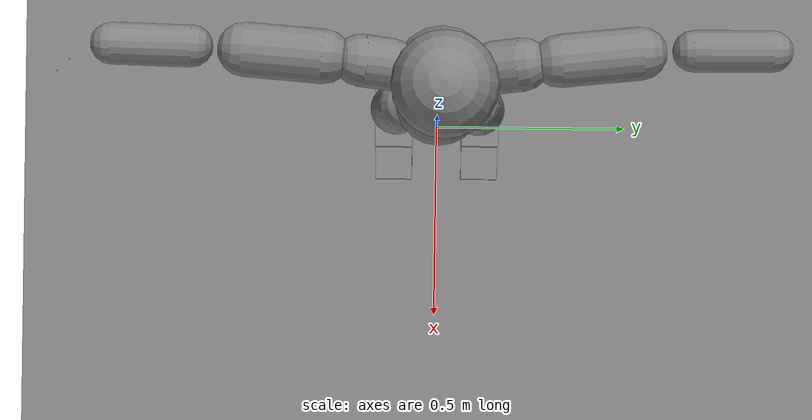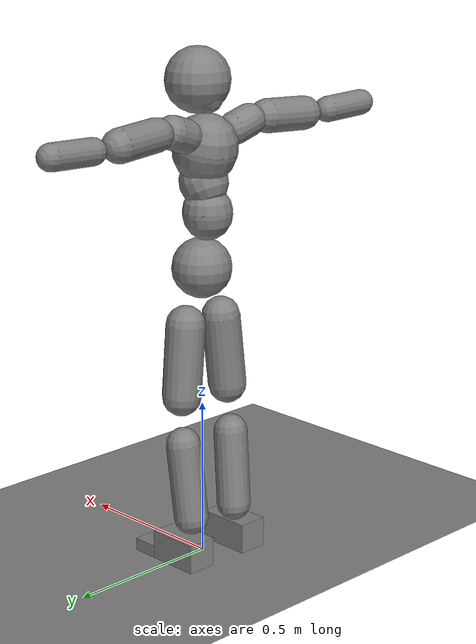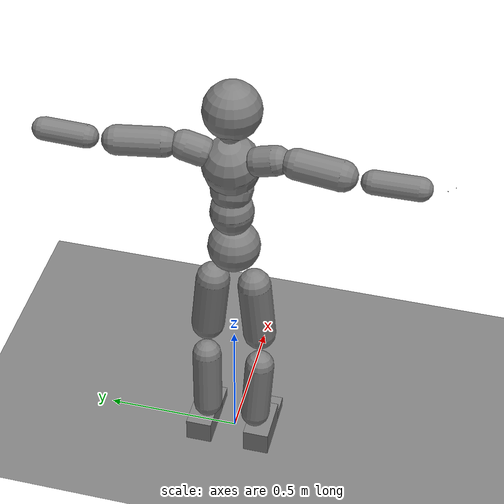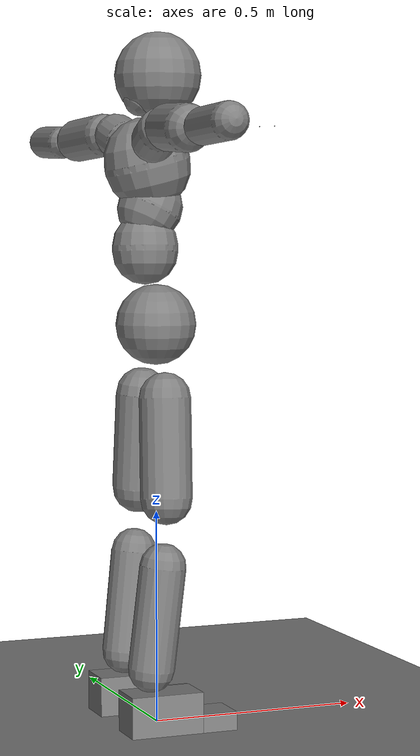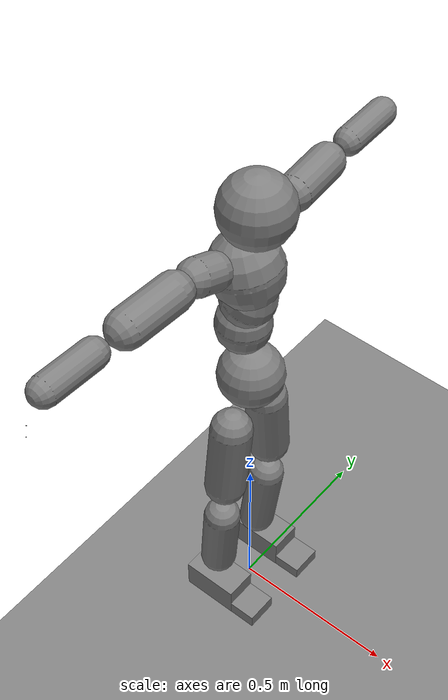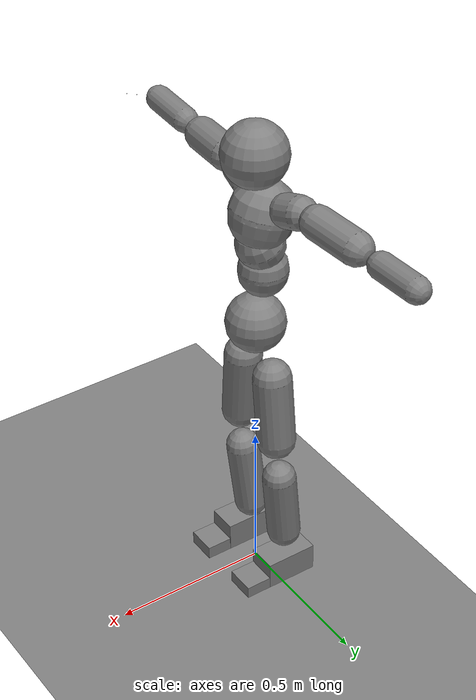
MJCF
<?xml version="1.0" encoding="utf-8"?>
<mujoco model="smpl_shadowhand">
  <compiler angle="radian" coordinate="local" meshdir="../stls/hand" texturedir="../textures"></compiler>

  <option timestep="0.00555" iterations="20" apirate="200">
      <flag warmstart="enable"></flag>
  </option>

  <size njmax="500" nconmax="100" nuser_jnt="1" nuser_site="1" nuser_tendon="1" nuser_sensor="1" nuser_actuator="16" nstack="600000"></size>

  <visual>
      <map fogstart="3" fogend="5" force="0.1"></map>
      <quality shadowsize="4096"></quality>
  </visual>

  <default>
    <default class="robot0:asset_class">
        <geom friction="1 0.005 0.001" condim="3" margin="0.0005" contype="1" conaffinity="1"></geom>
        <joint limited="true" damping="0.1" armature="0.001" margin="0.01" frictionloss="0.001"></joint>
        <site size="0.005" rgba="0.4 0.9 0.4 1"></site>
        <general ctrllimited="true" forcelimited="true"></general>
    </default>
    <default class="robot0:D_Touch">
        <site type="box" size="0.009 0.004 0.013" pos="0 -0.004 0.018" rgba="0.8 0.8 0.8 0.15" group="4"></site>
    </default>
    <default class="robot0:DC_Hand">
        <geom material="robot0:MatColl" contype="1" conaffinity="0" group="4"></geom>
    </default>
    <default class="robot0:D_Vizual">
        <geom material="robot0:MatViz" contype="0" conaffinity="0" group="1" type="mesh"></geom>
    </default>
    <default class="robot0:free">
        <joint type="free" damping="0" armature="0" limited="false"></joint>
    </default>

    <motor ctrlrange="-1 1" ctrllimited="true"/>
    <geom type="capsule" condim="1" friction="1.0 0.05 0.05" solimp=".9 .99 .003" solref=".015 1"/>
    <joint type="hinge" damping="0.1" stiffness="5" armature=".007" limited="true" solimplimit="0 .99 .01"/>
    <site size=".04" group="3"/>
    <default class="force-torque">
      <site type="box" size=".01 .01 .02" rgba="1 0 0 1"/>
    </default>
    <default class="touch">
      <site type="capsule" rgba="0 0 1 .3"/>
    </default>
  </default>

  <contact>
      <pair geom1="robot0:C_ffdistal" geom2="robot0:C_thdistal" condim="1"></pair>
      <pair geom1="robot0:C_ffmiddle" geom2="robot0:C_thdistal" condim="1"></pair>
      <pair geom1="robot0:C_ffproximal" geom2="robot0:C_thdistal" condim="1"></pair>
      <pair geom1="robot0:C_mfproximal" geom2="robot0:C_thdistal" condim="1"></pair>
      <pair geom1="robot0:C_mfdistal" geom2="robot0:C_thdistal" condim="1"></pair>
      <pair geom1="robot0:C_rfdistal" geom2="robot0:C_thdistal" condim="1"></pair>
      <pair geom1="robot0:C_lfdistal" geom2="robot0:C_thdistal" condim="1"></pair>
      <pair geom1="robot0:C_palm0" geom2="robot0:C_thdistal" condim="1"></pair>
      <pair geom1="robot0:C_mfdistal" geom2="robot0:C_ffdistal" condim="1"></pair>
      <pair geom1="robot0:C_rfdistal" geom2="robot0:C_mfdistal" condim="1"></pair>
      <pair geom1="robot0:C_lfdistal" geom2="robot0:C_rfdistal" condim="1"></pair>
      <pair geom1="robot0:C_mfproximal" geom2="robot0:C_ffproximal" condim="1"></pair>
      <pair geom1="robot0:C_rfproximal" geom2="robot0:C_mfproximal" condim="1"></pair>
      <pair geom1="robot0:C_lfproximal" geom2="robot0:C_rfproximal" condim="1"></pair>
      <pair geom1="robot0:C_lfdistal" geom2="robot0:C_rfdistal" condim="1"></pair>
      <pair geom1="robot0:C_lfdistal" geom2="robot0:C_mfdistal" condim="1"></pair>
      <pair geom1="robot0:C_lfdistal" geom2="robot0:C_rfmiddle" condim="1"></pair>
      <pair geom1="robot0:C_lfmiddle" geom2="robot0:C_rfdistal" condim="1"></pair>
      <pair geom1="robot0:C_lfmiddle" geom2="robot0:C_rfmiddle" condim="1"></pair>
  </contact>

  <tendon>
      <fixed name="robot0:T_FFJ1c" limited="true" range="-0.001 0.001">
          <joint joint="robot0:FFJ0" coef="0.00705"></joint>
          <joint joint="robot0:FFJ1" coef="-0.00805"></joint>
      </fixed>
      <fixed name="robot0:T_MFJ1c" limited="true" range="-0.001 0.001">
          <joint joint="robot0:MFJ0" coef="0.00705"></joint>
          <joint joint="robot0:MFJ1" coef="-0.00805"></joint>
      </fixed>
      <fixed name="robot0:T_RFJ1c" limited="true" range="-0.001 0.001">
          <joint joint="robot0:RFJ0" coef="0.00705"></joint>
          <joint joint="robot0:RFJ1" coef="-0.00805"></joint>
      </fixed>
      <fixed name="robot0:T_LFJ1c" limited="true" range="-0.001 0.001">
          <joint joint="robot0:LFJ0" coef="0.00705"></joint>
          <joint joint="robot0:LFJ1" coef="-0.00805"></joint>
      </fixed>
  </tendon>

  <asset>
    <texture type="skybox" builtin="gradient" rgb1="0.44 0.85 0.56" rgb2="0.46 0.87 0.58" width="32" height="32"></texture>

    <texture name="robot0:texplane" type="2d" builtin="checker" rgb1="0.2 0.3 0.4" rgb2="0.1 0.15 0.2" width="512" height="512"></texture>
    <texture name="robot0:texgeom" type="cube" builtin="flat" mark="cross" width="127" height="127" rgb1="0.3 0.6 0.5" rgb2="0.3 0.6 0.5" markrgb="0 0 0" random="0.01"></texture>

    <material name="robot0:MatGnd" reflectance="0.5" texture="robot0:texplane" texrepeat="1 1" texuniform="true"></material>
    <material name="robot0:MatColl" specular="1" shininess="0.3" reflectance="0.5" rgba="0.4 0.5 0.6 1"></material>
    <material name="robot0:MatViz" specular="0.75" shininess="0.1" reflectance="0.5" rgba="0.93 0.93 0.93 1"></material>
    <material name="robot0:object" texture="robot0:texgeom" texuniform="false"></material>
    <material name="floor_mat" specular="0" shininess="0.5" reflectance="0" rgba="0.2 0.2 0.2 0"></material>

    <mesh name="robot0:palm" scale="0.001 0.001 0.001" file="palm.stl"></mesh>
    <mesh name="robot0:knuckle" scale="0.001 0.001 0.001" file="knuckle.stl"></mesh>
    <mesh name="robot0:F3" scale="0.001 0.001 0.001" file="F3.stl"></mesh>
    <mesh name="robot0:F2" scale="0.001 0.001 0.001" file="F2.stl"></mesh>
    <mesh name="robot0:F1" scale="0.001 0.001 0.001" file="F1.stl"></mesh>
    <mesh name="robot0:lfmetacarpal" scale="0.001 0.001 0.001" file="lfmetacarpal.stl"></mesh>
    <mesh name="robot0:TH3_z" scale="0.001 0.001 0.001" file="TH3_z.stl"></mesh>
    <mesh name="robot0:TH2_z" scale="0.001 0.001 0.001" file="TH2_z.stl"></mesh>
    <mesh name="robot0:TH1_z" scale="0.001 0.001 0.001" file="TH1_z.stl"></mesh>
  </asset>

  <worldbody>
    <light directional="true" ambient="0.2 0.2 0.2" diffuse="0.8 0.8 0.8" specular="0.3 0.3 0.3" castshadow="false" pos="0 1 4" dir="0 0 -1" name="light0"></light>
    <geom name="floor" type="plane" conaffinity="1" size="100 100 .2" />
    <body name="Pelvis" pos="0 0 0.94">
      <freejoint name="Pelvis"/>
      <geom type="sphere" contype="1" conaffinity="1" density="4629.6296296296305" size="0.0942" pos="0.0000 0.0000 0.0000"/>
      <body name="L_Hip" pos="-0.0068 0.0695 -0.0914">
        <joint name="L_Hip_x" type="hinge" pos="0 0 0" axis="1 0 0" stiffness="500" damping="50" armature="0.02" range="-3.14159 3.14159"/>
        <joint name="L_Hip_y" type="hinge" pos="0 0 0" axis="0 1 0" stiffness="500" damping="50" armature="0.02" range="-3.14159 3.14159"/>
        <joint name="L_Hip_z" type="hinge" pos="0 0 0" axis="0 0 1" stiffness="500" damping="50" armature="0.02" range="-3.14159 3.14159"/>
        <geom type="capsule" contype="1" conaffinity="1" density="2040.816327" fromto="-0.0009 0.0069 -0.0750 -0.0036 0.0274 -0.3002" size="0.0615"/>
        <body name="L_Knee" pos="-0.0045 0.0343 -0.3752">
          <joint name="L_Knee_x" type="hinge" pos="0 0 0" axis="1 0 0" stiffness="500" damping="50" armature="0.02" range="-3.14159 3.14159"/>
          <joint name="L_Knee_y" type="hinge" pos="0 0 0" axis="0 1 0" stiffness="500" damping="50" armature="0.02" range="-3.14159 3.14159"/>
          <joint name="L_Knee_z" type="hinge" pos="0 0 0" axis="0 0 1" stiffness="500" damping="50" armature="0.02" range="-3.14159 3.14159"/>
          <geom type="capsule" contype="1" conaffinity="1" density="1234.567901" fromto="-0.0087 -0.0027 -0.0796 -0.0350 -0.0109 -0.3184" size="0.0541"/>
          <body name="L_Ankle" pos="-0.0437 -0.0136 -0.398">
            <joint name="L_Ankle_x" type="hinge" pos="0 0 0" axis="1 0 0" stiffness="400" damping="40" armature="0.02" range="-3.14159 3.14159"/>
            <joint name="L_Ankle_y" type="hinge" pos="0 0 0" axis="0 1 0" stiffness="400" damping="40" armature="0.02" range="-3.14159 3.14159"/>
            <joint name="L_Ankle_z" type="hinge" pos="0 0 0" axis="0 0 1" stiffness="400" damping="40" armature="0.02" range="-3.14159 3.14159"/>
            <geom type="box" pos="0.0242 0.0233 -0.0239" size="0.085 0.0483 0.0464" quat="1.0000 0.0000 0.0000 0.0000"/>
            <body name="L_Toe" pos="0.1193 0.0264 -0.0558">
              <joint name="L_Toe_x" type="hinge" pos="0 0 0" axis="1 0 0" stiffness="200" damping="20" armature="0.02" range="-3.14159 3.14159"/>
              <joint name="L_Toe_y" type="hinge" pos="0 0 0" axis="0 1 0" stiffness="200" damping="20" armature="0.02" range="-3.14159 3.14159"/>
              <joint name="L_Toe_z" type="hinge" pos="0 0 0" axis="0 0 1" stiffness="200" damping="20" armature="0.02" range="-3.14159 3.14159"/>
              <geom type="box" pos="0.0248 -0.0030 0.0055" size="0.0496 0.0478 0.02" quat="1.0000 0.0000 0.0000 0.0000"/>
            </body>
          </body>
        </body>
      </body>
      <body name="R_Hip" pos="-0.0043 -0.0677 -0.0905">
        <joint name="R_Hip_x" type="hinge" pos="0 0 0" axis="1 0 0" stiffness="500" damping="50" armature="0.02" range="-3.14159 3.14159"/>
        <joint name="R_Hip_y" type="hinge" pos="0 0 0" axis="0 1 0" stiffness="500" damping="50" armature="0.02" range="-3.14159 3.14159"/>
        <joint name="R_Hip_z" type="hinge" pos="0 0 0" axis="0 0 1" stiffness="500" damping="50" armature="0.02" range="-3.14159 3.14159"/>
        <geom type="capsule" contype="1" conaffinity="1" density="2040.816327" fromto="-0.0018 -0.0077 -0.0765 -0.0071 -0.0306 -0.3061" size="0.0606"/>
        <body name="R_Knee" pos="-0.0089 -0.0383 -0.3826">
          <joint name="R_Knee_x" type="hinge" pos="0 0 0" axis="1 0 0" stiffness="500" damping="50" armature="0.02" range="-3.14159 3.14159"/>
          <joint name="R_Knee_y" type="hinge" pos="0 0 0" axis="0 1 0" stiffness="500" damping="50" armature="0.02" range="-3.14159 3.14159"/>
          <joint name="R_Knee_z" type="hinge" pos="0 0 0" axis="0 0 1" stiffness="500" damping="50" armature="0.02" range="-3.14159 3.14159"/>
          <geom type="capsule" contype="1" conaffinity="1" density="1234.567901" fromto="-0.0085 0.0032 -0.0797 -0.0338 0.0126 -0.3187" size="0.0541"/>
          <body name="R_Ankle" pos="-0.0423 0.0158 -0.3984">
            <joint name="R_Ankle_x" type="hinge" pos="0 0 0" axis="1 0 0" stiffness="400" damping="40" armature="0.02" range="-3.14159 3.14159"/>
            <joint name="R_Ankle_y" type="hinge" pos="0 0 0" axis="0 1 0" stiffness="400" damping="40" armature="0.02" range="-3.14159 3.14159"/>
            <joint name="R_Ankle_z" type="hinge" pos="0 0 0" axis="0 0 1" stiffness="400" damping="40" armature="0.02" range="-3.14159 3.14159"/>
            <geom type="box" pos="0.0256 -0.0212 -0.0174" size="0.0865 0.0483 0.0478" quat="1.0000 0.0000 0.0000 0.0000"/>
            <body name="R_Toe" pos="0.1233 -0.0254 -0.0481">
              <joint name="R_Toe_x" type="hinge" pos="0 0 0" axis="1 0 0" stiffness="200" damping="20" armature="0.02" range="-3.14159 3.14159"/>
              <joint name="R_Toe_y" type="hinge" pos="0 0 0" axis="0 1 0" stiffness="200" damping="20" armature="0.02" range="-3.14159 3.14159"/>
              <joint name="R_Toe_z" type="hinge" pos="0 0 0" axis="0 0 1" stiffness="200" damping="20" armature="0.02" range="-3.14159 3.14159"/>
              <geom type="box" pos="0.0227 0.0042 0.0045" size="0.0493 0.0479 0.0216" quat="1.0000 0.0000 0.0000 0.0000"/>
            </body>
          </body>
        </body>
      </body>
      <body name="Torso" pos="-0.0267 -0.0025 0.109">
        <joint name="Torso_x" type="hinge" pos="0 0 0" axis="1 0 0" stiffness="1000" damping="100" armature="0.02" range="-3.14159 3.14159"/>
        <joint name="Torso_y" type="hinge" pos="0 0 0" axis="0 1 0" stiffness="1000" damping="100" armature="0.02" range="-3.14159 3.14159"/>
        <joint name="Torso_z" type="hinge" pos="0 0 0" axis="0 0 1" stiffness="1000" damping="100" armature="0.02" range="-3.14159 3.14159"/>
        <geom type="capsule" contype="1" conaffinity="1" density="2040.816327" fromto="0.0005 0.0025 0.0608 0.0006 0.0030 0.0743" size="0.0769"/>
        <body name="Spine" pos="0.0011 0.0055 0.1352">
          <joint name="Spine_x" type="hinge" pos="0 0 0" axis="1 0 0" stiffness="1000" damping="100" armature="0.02" range="-3.14159 3.14159"/>
          <joint name="Spine_y" type="hinge" pos="0 0 0" axis="0 1 0" stiffness="1000" damping="100" armature="0.02" range="-3.14159 3.14159"/>
          <joint name="Spine_z" type="hinge" pos="0 0 0" axis="0 0 1" stiffness="1000" damping="100" armature="0.02" range="-3.14159 3.14159"/>
          <geom type="capsule" contype="1" conaffinity="1" density="2040.816327" fromto="0.0114 0.0007 0.0238 0.0140 0.0008 0.0291" size="0.0755"/>
          <body name="Chest" pos="0.0254 0.0015 0.0529">
            <joint name="Chest_x" type="hinge" pos="0 0 0" axis="1 0 0" stiffness="1000" damping="100" armature="0.02" range="-3.14159 3.14159"/>
            <joint name="Chest_y" type="hinge" pos="0 0 0" axis="0 1 0" stiffness="1000" damping="100" armature="0.02" range="-3.14159 3.14159"/>
            <joint name="Chest_z" type="hinge" pos="0 0 0" axis="0 0 1" stiffness="1000" damping="100" armature="0.02" range="-3.14159 3.14159"/>
            <geom type="capsule" contype="1" conaffinity="1" density="2040.816327" fromto="-0.0173 -0.0009 0.0682 -0.0212 -0.0010 0.0833" size="0.1002"/>
            <body name="Neck" pos="-0.0429 -0.0028 0.2139">
              <joint name="Neck_x" type="hinge" pos="0 0 0" axis="1 0 0" stiffness="100" damping="10" armature="0.02" range="-3.14159 3.14159"/>
              <joint name="Neck_y" type="hinge" pos="0 0 0" axis="0 1 0" stiffness="100" damping="10" armature="0.02" range="-3.14159 3.14159"/>
              <joint name="Neck_z" type="hinge" pos="0 0 0" axis="0 0 1" stiffness="100" damping="10" armature="0.02" range="-3.14159 3.14159"/>
              <geom type="capsule" contype="1" conaffinity="1" density="1000" fromto="0.0103 0.0010 0.0130 0.0411 0.0041 0.0520" size="0.0436"/>
              <body name="Head" pos="0.0513 0.0052 0.065">
                <joint name="Head_x" type="hinge" pos="0 0 0" axis="1 0 0" stiffness="100" damping="10" armature="0.02" range="-3.14159 3.14159"/>
                <joint name="Head_y" type="hinge" pos="0 0 0" axis="0 1 0" stiffness="100" damping="10" armature="0.02" range="-3.14159 3.14159"/>
                <joint name="Head_z" type="hinge" pos="0 0 0" axis="0 0 1" stiffness="100" damping="10" armature="0.02" range="-3.14159 3.14159"/>
                <geom type="sphere" contype="1" conaffinity="1" density="1000" size="0.1011" pos="0.0000 0.0000 0.0000"/>
              </body>
            </body>
            <body name="L_Thorax" pos="-0.0341 0.0788 0.1217">
              <joint name="L_Thorax_x" type="hinge" pos="0 0 0" axis="1 0 0" stiffness="400" damping="40" armature="0.02" range="-3.14159 3.14159"/>
              <joint name="L_Thorax_y" type="hinge" pos="0 0 0" axis="0 1 0" stiffness="400" damping="40" armature="0.02" range="-3.14159 3.14159"/>
              <joint name="L_Thorax_z" type="hinge" pos="0 0 0" axis="0 0 1" stiffness="400" damping="40" armature="0.02" range="-3.14159 3.14159"/>
              <geom type="capsule" contype="1" conaffinity="1" density="1000" fromto="-0.0018 0.0182 0.0061 -0.0071 0.0728 0.0244" size="0.0521"/>
              <body name="L_Shoulder" pos="-0.0089 0.091 0.0305">
                <joint name="L_Shoulder_x" type="hinge" pos="0 0 0" axis="1 0 0" stiffness="400" damping="40" armature="0.02" range="-3.14159 3.14159"/>
                <joint name="L_Shoulder_y" type="hinge" pos="0 0 0" axis="0 1 0" stiffness="400" damping="40" armature="0.02" range="-3.14159 3.14159"/>
                <joint name="L_Shoulder_z" type="hinge" pos="0 0 0" axis="0 0 1" stiffness="400" damping="40" armature="0.02" range="-3.14159 3.14159"/>
                <geom type="capsule" contype="1" conaffinity="1" density="1000" fromto="-0.0055 0.0519 -0.0026 -0.0220 0.2077 -0.0102" size="0.0517"/>
                <body name="L_Elbow" pos="-0.0275 0.2596 -0.0128">
                  <joint name="L_Elbow_x" type="hinge" pos="0 0 0" axis="1 0 0" stiffness="300" damping="30" armature="0.02" range="-3.14159 3.14159"/>
                  <joint name="L_Elbow_y" type="hinge" pos="0 0 0" axis="0 1 0" stiffness="300" damping="30" armature="0.02" range="-3.14159 3.14159"/>
                  <joint name="L_Elbow_z" type="hinge" pos="0 0 0" axis="0 0 1" stiffness="300" damping="30" armature="0.02" range="-3.14159 3.14159"/>
                  <geom type="capsule" contype="1" conaffinity="1" density="1000" fromto="-0.0002 0.0498 0.0018 -0.0009 0.1994 0.0072" size="0.0405"/>
                  <body name="L_Wrist" pos="-0.0012 0.2492 0.009">
                    <joint name="L_Wrist_x" type="hinge" pos="0 0 0" axis="1 0 0" stiffness="100" damping="10" armature="0.02" range="-3.14159 3.14159"/>
                    <joint name="L_Wrist_y" type="hinge" pos="0 0 0" axis="0 1 0" stiffness="100" damping="10" armature="0.02" range="-3.14159 3.14159"/>
                    <joint name="L_Wrist_z" type="hinge" pos="0 0 0" axis="0 0 1" stiffness="100" damping="10" armature="0.02" range="-3.14159 3.14159"/>

                    <body name="L_Hand" pos="0 0.01 0" quat="0.707 -0.707 0 0">
                      <site name="L_Hand" class="touch" type="sphere" size=".041"/>
                      <geom name="robot0:C_palm0_l" class="robot0:DC_Hand" size="0.032 0.0111 0.049" pos="0.011 0 0.038" type="box" rgba="0.4 0.5 0.6 0.1" />
                      <geom name="robot0:C_palm1_l" class="robot0:DC_Hand" size="0.011 0.0111 0.025" pos="-0.032 0 0.014" type="box" rgba="0.4 0.5 0.6 0.1" />
                      <geom name="robot0:C_ffproximal_l" class="robot0:DC_Hand" size="0.01 0.0175" pos="0.036 0.004 0.1075" type="capsule" />
                      <geom name="robot0:C_ffmiddle_l" class="robot0:DC_Hand" size="0.00805 0.0125" pos="0.036 0.004 0.1375" type="capsule" />
                      <geom name="robot0:C_ffdistal_l" class="robot0:DC_Hand" size="0.00705 0.012" pos="0.036 0.004 0.162" type="capsule" condim="4" />

                      <geom name="robot0:C_mfproximal_l" class="robot0:DC_Hand" size="0.01 0.0175" pos="0.011 0 0.1125" type="capsule" />
                      <geom name="robot0:C_mfmiddle_l" class="robot0:DC_Hand" size="0.00805 0.0125" pos="0.011 0 0.1465" type="capsule" />
                      <geom name="robot0:C_mfdistal_l" class="robot0:DC_Hand" size="0.00705 0.012" pos="0.011 0 0.171" type="capsule" condim="4" />

                      <geom name="robot0:C_rfproximal_l" class="robot0:DC_Hand" size="0.01 0.0175" pos="-0.012 0.004 0.1075" type="capsule" />
                      <geom name="robot0:C_rfmiddle_l" class="robot0:DC_Hand" size="0.00805 0.0125" pos="-0.012 0.004 0.1355" type="capsule" />
                      <geom name="robot0:C_rfdistal_l" class="robot0:DC_Hand" size="0.00705 0.012" pos="-0.012 0.004 0.16" type="capsule" condim="4" />

                      <geom name="robot0:C_lfmetacarpal_l" class="robot0:DC_Hand" size="0.0095 0.0111 0.025" pos="-0.0335 0 0.054" type="box" rgba="0.4 0.5 0.6 0.2" />
                      <geom name="robot0:C_lfproximal_l" class="robot0:DC_Hand" size="0.01 0.0138" pos="-0.034 0.008 0.0965" type="capsule" />
                      <geom name="robot0:C_lfmiddle_l" class="robot0:DC_Hand" size="0.00805 0.0125" pos="-0.034 0.008 0.1165" type="capsule" />
                      <geom name="robot0:C_lfdistal_l" class="robot0:DC_Hand" size="0.00705 0.012" pos="-0.034 0.008 0.136" type="capsule" condim="4" />

                      <geom name="robot0:C_thproximal_l" class="robot0:DC_Hand" size="0.013 0.019" pos="0.044 0.017 0.036" type="capsule" rgba="0.4 0.5 0.6 0.1" quat="0.923956 0 0.382499 0"/>
                      <geom name="robot0:C_thmiddle_l" class="robot0:DC_Hand" size="0.011 0.016" pos="0.065 0.017 0.057" type="capsule" quat="0.923956 0 0.382499 0"/>
                      <geom name="robot0:C_thdistal_l" class="robot0:DC_Hand" size="0.00918 0.013" pos="0.082 0.017 0.075" type="capsule" condim="4" quat="0.923956 0 0.382499 0"/>
                    </body>

                  </body>
                </body>
              </body>
            </body>
            <body name="R_Thorax" pos="-0.0386 -0.0818 0.1188">
              <joint name="R_Thorax_x" type="hinge" pos="0 0 0" axis="1 0 0" stiffness="400" damping="40" armature="0.02" range="-3.14159 3.14159"/>
              <joint name="R_Thorax_y" type="hinge" pos="0 0 0" axis="0 1 0" stiffness="400" damping="40" armature="0.02" range="-3.14159 3.14159"/>
              <joint name="R_Thorax_z" type="hinge" pos="0 0 0" axis="0 0 1" stiffness="400" damping="40" armature="0.02" range="-3.14159 3.14159"/>
              <geom type="capsule" contype="1" conaffinity="1" density="1000" fromto="-0.0018 -0.0192 0.0065 -0.0073 -0.0768 0.0260" size="0.0511"/>
              <body name="R_Shoulder" pos="-0.0091 -0.096 0.0326">
                <joint name="R_Shoulder_x" type="hinge" pos="0 0 0" axis="1 0 0" stiffness="400" damping="40" armature="0.02" range="-3.14159 3.14159"/>
                <joint name="R_Shoulder_y" type="hinge" pos="0 0 0" axis="0 1 0" stiffness="400" damping="40" armature="0.02" range="-3.14159 3.14159"/>
                <joint name="R_Shoulder_z" type="hinge" pos="0 0 0" axis="0 0 1" stiffness="400" damping="40" armature="0.02" range="-3.14159 3.14159"/>
                <geom type="capsule" contype="1" conaffinity="1" density="1000" fromto="-0.0043 -0.0507 -0.0027 -0.0171 -0.2030 -0.0107" size="0.0531"/>
                <body name="R_Elbow" pos="-0.0214 -0.2537 -0.0133">
                  <joint name="R_Elbow_x" type="hinge" pos="0 0 0" axis="1 0 0" stiffness="300" damping="30" armature="0.02" range="-3.14159 3.14159"/>
                  <joint name="R_Elbow_y" type="hinge" pos="0 0 0" axis="0 1 0" stiffness="300" damping="30" armature="0.02" range="-3.14159 3.14159"/>
                  <joint name="R_Elbow_z" type="hinge" pos="0 0 0" axis="0 0 1" stiffness="300" damping="30" armature="0.02" range="-3.14159 3.14159"/>
                  <geom type="capsule" contype="1" conaffinity="1" density="1000" fromto="-0.0011 -0.0511 0.0016 -0.0044 -0.2042 0.0062" size="0.0408"/>
                  <body name="R_Wrist" pos="-0.0056 -0.2553 0.0078">
                    <joint name="R_Wrist_x" type="hinge" pos="0 0 0" axis="1 0 0" stiffness="100" damping="10" armature="0.02" range="-3.14159 3.14159"/>
                    <joint name="R_Wrist_y" type="hinge" pos="0 0 0" axis="0 1 0" stiffness="100" damping="10" armature="0.02" range="-3.14159 3.14159"/>
                    <joint name="R_Wrist_z" type="hinge" pos="0 0 0" axis="0 0 1" stiffness="100" damping="10" armature="0.02" range="-3.14159 3.14159"/>

                    <body name="R_Hand" pos="0 -0.01 0" quat="0.707 0.707 0 0">
                      <inertial mass="0.1" pos="0 0 0" diaginertia="0.001 0.001 0.001"/>
                      <body childclass="robot0:asset_class" name="robot0:palm" pos="0 0 0" euler="0 0 0">
                        <inertial pos="0.006 0 0.036" quat="0.715833 0.0439898 0.0749825 0.692839" mass="0.3" diaginertia="0.001 0.001 0.001" />
                        <joint name="robot0:WRJ0" type="hinge" pos="0 0 0" axis="1 0 0" range="-0.698 0.489" damping="0.5" armature="0.005" user="1122"/>
                        <joint name="robot0:WRJ1" type="hinge" pos="0 0 0" axis="0 1 0" range="-0.489 0.14" damping="0.5" armature="0.005" user="1123"/>
                        <joint name="robot0:WRJ2" type="hinge" pos="0 0 0" axis="0 0 1" range="-1.57 1.57" damping="0.5" armature="0.005" user="1122"/>
                        <geom name="robot0:C_palm0" class="robot0:DC_Hand" size="0.032 0.0111 0.049" pos="0.011 0 0.038" type="box" rgba="0.4 0.5 0.6 0.1" />
                        <geom name="robot0:C_palm1" class="robot0:DC_Hand" size="0.011 0.0111 0.025" pos="-0.032 0 0.014" type="box" rgba="0.4 0.5 0.6 0.1" />
                        <body name="robot0:ffknuckle" pos="0.036 -0.004 0.090">
                            <inertial pos="0 0 0" quat="0.520062 0.854102 0.00600072 -0.00300036" mass="0.008" diaginertia="1e-05 1e-05 1e-05" />
                            <joint name="robot0:FFJ3" pos="0 0 0" axis="0 1 0" range="-0.349 0.349" user="1103" />
                            <body name="robot0:ffproximal" pos="0 0 0">
                                <inertial pos="0 0 0.023" quat="0.707095 -0.00400054 0.00400054 0.707095" mass="0.014" diaginertia="1e-05 1e-05 1e-05" />
                                <joint name="robot0:FFJ2" pos="0 0 0" axis="1 0 0" range="0 1.571" user="1102" />
                                <geom name="robot0:C_ffproximal" class="robot0:DC_Hand" size="0.01 0.0175" pos="0 0 0.0175" type="capsule" />
                                <body name="robot0:ffmiddle" pos="0 0 0.035">
                                    <inertial pos="0 0 0.011" quat="0.707107 0 0 0.707107" mass="0.012" diaginertia="1e-05 1e-05 1e-05" />
                                    <joint name="robot0:FFJ1" pos="0 0 0" axis="1 0 0" range="0 1.571" user="1101" />
                                    <geom name="robot0:C_ffmiddle" class="robot0:DC_Hand" size="0.00805 0.0125" pos="0 0 0.0125" type="capsule" />
                                    <body name="robot0:ffdistal" pos="0 0 0.025">
                                        <inertial pos="0 0 0.015" quat="0.7071 -0.00300043 0.00300043 0.7071" mass="0.01" diaginertia="1e-05 1e-05 1e-05" />
                                        <joint name="robot0:FFJ0" pos="0 0 0" axis="1 0 0" range="0 1.571" user="1100" />
                                        <geom name="robot0:C_ffdistal" class="robot0:DC_Hand" size="0.00705 0.012" pos="0 0 0.012" type="capsule" condim="4" />
                                        <site name="robot0:S_fftip" pos="0 0 0.026" group="3" />
                                        <site name="robot0:Tch_fftip" class="robot0:D_Touch" pos="0 -0.004 0.018" />
                                    </body>
                                </body>
                            </body>
                        </body>
                        <body name="robot0:mfknuckle" pos="0.011 0 0.099">
                            <inertial pos="0 0 0" quat="0.520062 0.854102 0.00600072 -0.00300036" mass="0.008" diaginertia="1e-05 1e-05 1e-05" />
                            <joint name="robot0:MFJ3" pos="0 0 0" axis="0 1 0" range="-0.349 0.349" user="1107" />
                            <body name="robot0:mfproximal" pos="0 0 0">
                                <inertial pos="0 0 0.023" quat="0.707095 -0.00400054 0.00400054 0.707095" mass="0.014" diaginertia="1e-05 1e-05 1e-05" />
                                <joint name="robot0:MFJ2" pos="0 0 0" axis="1 0 0" range="0 1.571" user="1106" />
                                <geom name="robot0:C_mfproximal" class="robot0:DC_Hand" size="0.01 0.0175" pos="0 0 0.0135" type="capsule" />
                                <body name="robot0:mfmiddle" pos="0 0 0.035">
                                    <inertial pos="0 0 0.012" quat="0.707107 0 0 0.707107" mass="0.012" diaginertia="1e-05 1e-05 1e-05" />
                                    <joint name="robot0:MFJ1" pos="0 0 0" axis="1 0 0" range="0 1.571" user="1105" />
                                    <geom name="robot0:C_mfmiddle" class="robot0:DC_Hand" size="0.00805 0.0125" pos="0 0 0.0125" type="capsule" />
                                    <body name="robot0:mfdistal" pos="0 0 0.025">
                                        <inertial pos="0 0 0.015" quat="0.7071 -0.00300043 0.00300043 0.7071" mass="0.01" diaginertia="1e-05 1e-05 1e-05" />
                                        <joint name="robot0:MFJ0" pos="0 0 0" axis="1 0 0" range="0 1.571" user="1104" />
                                        <geom name="robot0:C_mfdistal" class="robot0:DC_Hand" size="0.00705 0.012" pos="0 0 0.012" type="capsule" condim="4" />
                                        <site name="robot0:S_mftip" pos="0 0 0.026" group="3" />
                                        <site name="robot0:Tch_mftip" class="robot0:D_Touch" pos="0 -0.004 0.018" />
                                    </body>
                                </body>
                            </body>
                        </body>
                        <body name="robot0:rfknuckle" pos="-0.012 -0.004 0.090">
                            <inertial pos="0 0 0" quat="0.520062 0.854102 0.00600072 -0.00300036" mass="0.008" diaginertia="1e-05 1e-05 1e-05" />
                            <joint name="robot0:RFJ3" pos="0 0 0" axis="0 1 0" range="-0.349 0.349" user="1111" />
                            <body name="robot0:rfproximal" pos="0 0 0">
                                <inertial pos="0 0 0.023" quat="0.707095 -0.00400054 0.00400054 0.707095" mass="0.014" diaginertia="1e-05 1e-05 1e-05" />
                                <joint name="robot0:RFJ2" pos="0 0 0" axis="1 0 0" range="0 1.571" user="1110" />
                                <geom name="robot0:C_rfproximal" class="robot0:DC_Hand" size="0.01 0.0175" pos="0 0 0.0175" type="capsule" />
                                <body name="robot0:rfmiddle" pos="0 0 0.033">
                                    <inertial pos="0 0 0.012" quat="0.707107 0 0 0.707107" mass="0.012" diaginertia="1e-05 1e-05 1e-05" />
                                    <joint name="robot0:RFJ1" pos="0 0 0" axis="1 0 0" range="0 1.571" user="1109" />
                                    <geom name="robot0:C_rfmiddle" class="robot0:DC_Hand" size="0.00805 0.0125" pos="0 0 0.0125" type="capsule" />
                                    <body name="robot0:rfdistal" pos="0 0 0.025">
                                        <inertial pos="0 0 0.015" quat="0.7071 -0.00300043 0.00300043 0.7071" mass="0.01" diaginertia="1e-05 1e-05 1e-05" />
                                        <joint name="robot0:RFJ0" pos="0 0 0" axis="1 0 0" range="0 1.571" user="1108" />
                                        <geom name="robot0:C_rfdistal" class="robot0:DC_Hand" size="0.00705 0.012" pos="0 0 0.012" type="capsule" condim="4" />
                                        <site name="robot0:S_rftip" pos="0 0 0.026" group="3" />
                                        <site name="robot0:Tch_rftip" class="robot0:D_Touch" pos="0 -0.004 0.018" />
                                    </body>
                                </body>
                            </body>
                        </body>
                        <body name="robot0:lfmetacarpal" pos="-0.017 0 0.044">
                            <inertial pos="-0.014 0.001 0.014" quat="0.709167 -0.0920216 -0.0630148 0.696164" mass="0.075" diaginertia="1e-05 1e-05 1e-05" />
                            <joint name="robot0:LFJ4" pos="0 0 0" axis="0.570977 0 0.820966" range="0 0.785" user="1116" />
                            <geom name="robot0:C_lfmetacarpal" class="robot0:DC_Hand" size="0.0095 0.0111 0.025" pos="-0.0165 0 0.01" type="box" rgba="0.4 0.5 0.6 0.2" />
                            <body name="robot0:lfknuckle" pos="-0.017 -0.008 0.035">
                                <inertial pos="0 0 0" quat="0.520062 0.854102 0.00600072 -0.00300036" mass="0.008" diaginertia="1e-05 1e-05 1e-05" />
                                <joint name="robot0:LFJ3" pos="0 0 0" axis="0 1 0" range="-0.45 0.349" user="1115" />
                                <body name="robot0:lfproximal" pos="0 0 0">
                                    <inertial pos="0 0 0.023" quat="0.707095 -0.00400054 0.00400054 0.707095" mass="0.014" diaginertia="1e-05 1e-05 1e-05" />
                                    <joint name="robot0:LFJ2" pos="0 0 0" axis="1 0 0" range="0 1.571" user="1114" />
                                    <geom name="robot0:C_lfproximal" class="robot0:DC_Hand" size="0.01 0.0138" pos="0 0 0.0175" type="capsule" />
                                    <body name="robot0:lfmiddle" pos="0 0 0.025">
                                        <inertial pos="0 0 0.012" quat="0.707107 0 0 0.707107" mass="0.012" diaginertia="1e-05 1e-05 1e-05" />
                                        <joint name="robot0:LFJ1" pos="0 0 0" axis="1 0 0" range="0 1.571" user="1113" />
                                        <geom name="robot0:C_lfmiddle" class="robot0:DC_Hand" size="0.00805 0.0125" pos="0 0 0.0125" type="capsule" />
                                        <body name="robot0:lfdistal" pos="0 0 0.020">
                                            <inertial pos="0 0 0.015" quat="0.7071 -0.00300043 0.00300043 0.7071" mass="0.01" diaginertia="1e-05 1e-05 1e-05" />
                                            <joint name="robot0:LFJ0" pos="0 0 0" axis="1 0 0" range="0 1.571" user="1112" />
                                            <geom name="robot0:C_lfdistal" class="robot0:DC_Hand" size="0.00705 0.012" pos="0 0 0.012" type="capsule" condim="4" />
                                            <site name="robot0:S_lftip" pos="0 0 0.026" group="3" />
                                            <site name="robot0:Tch_lftip" class="robot0:D_Touch" pos="0 -0.004 0.018" />
                                        </body>
                                    </body>
                                </body>
                            </body>
                        </body>
                        <body name="robot0:thbase" pos="0.031 -0.017 0.023" quat="0.923956 0 0.382499 0">
                            <inertial pos="0 0 0" mass="0.01" diaginertia="1e-05 1e-05 1e-05" />
                            <joint name="robot0:THJ4" pos="0 0 0" axis="0 0 -1" range="-1.047 1.047" user="1121" />
                            <geom name="robot0:V_thbase" size="0.001 0.001 0.001" type="box" group="1" />
                            <body name="robot0:thproximal" pos="0 0 0">
                                <inertial pos="0 0 0.017" quat="0.981604 0 0.000999597 0.190923" mass="0.016" diaginertia="1e-05 1e-05 1e-05" />
                                <joint name="robot0:THJ3" pos="0 0 0" axis="1 0 0" range="0 1.222" user="1120" />
                                <geom name="robot0:C_thproximal" class="robot0:DC_Hand" size="0.013 0.019" pos="0 0 0.019" type="capsule" rgba="0.4 0.5 0.6 0.1" />
                                <body name="robot0:thhub" pos="0 0 0.032">
                                    <inertial pos="0 0 0" mass="0.002" diaginertia="1e-05 1e-05 1e-05" />
                                    <joint name="robot0:THJ2" pos="0 0 0" axis="1 0 0" range="-0.209 0.209" user="1119" />
                                    <geom name="robot0:V_thhub" size="0.001 0.001 0.001" type="box" group="1" />
                                    <body name="robot0:thmiddle" pos="0 0 0">
                                        <inertial pos="0 0 0.016" quat="0.999971 -0.000999971 -0.00699979 0.00299991" mass="0.016" diaginertia="1e-05 1e-05 1e-05" />
                                        <joint name="robot0:THJ1" pos="0 0 0" axis="0 1 0" range="-0.524 0.524" user="1118" />
                                        <geom name="robot0:C_thmiddle" class="robot0:DC_Hand" size="0.011 0.016" pos="0 0 0.016" type="capsule" />
                                        <body name="robot0:thdistal" pos="0 -0.004 0.028">
                                            <inertial pos="0 0 0.016" quat="0.99887 -0.00499935 -0.0469939 0.00499935" mass="0.016" diaginertia="1e-05 1e-05 1e-05" />
                                            <joint name="robot0:THJ0" pos="0 0 0" axis="0 1 0" range="-1.571 0" user="1117" />
                                            <geom name="robot0:C_thdistal" class="robot0:DC_Hand" size="0.00918 0.013" pos="0 0.004 0.013" type="capsule" condim="4" />
                                            <site name="robot0:S_thtip" pos="0 0.004 0.0275" group="3" />
                                            <site name="robot0:Tch_thtip" class="robot0:D_Touch" pos="-0.005 0 0.02" size="0.005 0.011 0.016" />
                                        </body>
                                    </body>
                                </body>
                            </body>
                        </body>
                      </body>
                    </body>

                  </body>
                </body>
              </body>
            </body>
          </body>
        </body>
      </body>
    </body>
  </worldbody>

  <actuator>
    <position name="robot0:A_WRJ1" class="robot0:asset_class" user="2038" joint="robot0:WRJ1" ctrlrange="-0.489 0.14" kp="5" forcerange="-4.785 4.785"></position>
    <position name="robot0:A_WRJ0" class="robot0:asset_class" user="2036" joint="robot0:WRJ0" ctrlrange="-0.698 0.489" kp="5" forcerange="-2.175 2.175"></position>

    <position name="robot0:A_FFJ3" class="robot0:asset_class" user="2004" joint="robot0:FFJ3" ctrlrange="-0.349 0.349" kp="1" forcerange="-0.9 0.9"></position>
    <position name="robot0:A_FFJ2" class="robot0:asset_class" user="2002" joint="robot0:FFJ2" ctrlrange="0 1.571" kp="1" forcerange="-0.9 0.9"></position>
    <position name="robot0:A_FFJ1" class="robot0:asset_class" user="2000" joint="robot0:FFJ1" ctrlrange="0 1.571" kp="1" forcerange="-0.7245 0.7245"></position>
    <position name="robot0:A_MFJ3" class="robot0:asset_class" user="2010" joint="robot0:MFJ3" ctrlrange="-0.349 0.349" kp="1" forcerange="-0.9 0.9"></position>
    <position name="robot0:A_MFJ2" class="robot0:asset_class" user="2008" joint="robot0:MFJ2" ctrlrange="0 1.571" kp="1" forcerange="-0.9 0.9"></position>
    <position name="robot0:A_MFJ1" class="robot0:asset_class" user="2006" joint="robot0:MFJ1" ctrlrange="0 1.571" kp="1" forcerange="-0.7245 0.7245"></position>
    <position name="robot0:A_RFJ3" class="robot0:asset_class" user="2016" joint="robot0:RFJ3" ctrlrange="-0.349 0.349" kp="1" forcerange="-0.9 0.9"></position>
    <position name="robot0:A_RFJ2" class="robot0:asset_class" user="2014" joint="robot0:RFJ2" ctrlrange="0 1.571" kp="1" forcerange="-0.9 0.9"></position>
    <position name="robot0:A_RFJ1" class="robot0:asset_class" user="2012" joint="robot0:RFJ1" ctrlrange="0 1.571" kp="1" forcerange="-0.7245 0.7245"></position>
    <position name="robot0:A_LFJ4" class="robot0:asset_class" user="2024" joint="robot0:LFJ4" ctrlrange="0 0.785" kp="1" forcerange="-0.9 0.9"></position>
    <position name="robot0:A_LFJ3" class="robot0:asset_class" user="2022" joint="robot0:LFJ3" ctrlrange="-0.349 0.349" kp="1" forcerange="-0.9 0.9"></position>
    <position name="robot0:A_LFJ2" class="robot0:asset_class" user="2020" joint="robot0:LFJ2" ctrlrange="0 1.571" kp="1" forcerange="-0.9 0.9"></position>
    <position name="robot0:A_LFJ1" class="robot0:asset_class" user="2018" joint="robot0:LFJ1" ctrlrange="0 1.571" kp="1" forcerange="-0.7245 0.7245"></position>
    <position name="robot0:A_THJ4" class="robot0:asset_class" user="2034" joint="robot0:THJ4" ctrlrange="-1.047 1.047" kp="1" forcerange="-2.3722 2.3722"></position>
    <position name="robot0:A_THJ3" class="robot0:asset_class" user="2032" joint="robot0:THJ3" ctrlrange="0 1.222" kp="1" forcerange="-1.45 1.45"></position>
    <position name="robot0:A_THJ2" class="robot0:asset_class" user="2030" joint="robot0:THJ2" ctrlrange="-0.209 0.209" kp="1" forcerange="-0.99 0.99"></position>
    <position name="robot0:A_THJ1" class="robot0:asset_class" user="2028" joint="robot0:THJ1" ctrlrange="-0.524 0.524" kp="1" forcerange="-0.99 0.99"></position>
    <position name="robot0:A_THJ0" class="robot0:asset_class" user="2026" joint="robot0:THJ0" ctrlrange="-1.571 0" kp="1" forcerange="-0.81 0.81"></position>

    <motor name="L_Hip_x" joint="L_Hip_x" gear="500"/>
    <motor name="L_Hip_y" joint="L_Hip_y" gear="500"/>
    <motor name="L_Hip_z" joint="L_Hip_z" gear="500"/>
    <motor name="L_Knee_x" joint="L_Knee_x" gear="500"/>
    <motor name="L_Knee_y" joint="L_Knee_y" gear="500"/>
    <motor name="L_Knee_z" joint="L_Knee_z" gear="500"/>
    <motor name="L_Ankle_x" joint="L_Ankle_x" gear="500"/>
    <motor name="L_Ankle_y" joint="L_Ankle_y" gear="500"/>
    <motor name="L_Ankle_z" joint="L_Ankle_z" gear="500"/>
    <motor name="L_Toe_x" joint="L_Toe_x" gear="500"/>
    <motor name="L_Toe_y" joint="L_Toe_y" gear="500"/>
    <motor name="L_Toe_z" joint="L_Toe_z" gear="500"/>
    <motor name="R_Hip_x" joint="R_Hip_x" gear="500"/>
    <motor name="R_Hip_y" joint="R_Hip_y" gear="500"/>
    <motor name="R_Hip_z" joint="R_Hip_z" gear="500"/>
    <motor name="R_Knee_x" joint="R_Knee_x" gear="500"/>
    <motor name="R_Knee_y" joint="R_Knee_y" gear="500"/>
    <motor name="R_Knee_z" joint="R_Knee_z" gear="500"/>
    <motor name="R_Ankle_x" joint="R_Ankle_x" gear="500"/>
    <motor name="R_Ankle_y" joint="R_Ankle_y" gear="500"/>
    <motor name="R_Ankle_z" joint="R_Ankle_z" gear="500"/>
    <motor name="R_Toe_x" joint="R_Toe_x" gear="500"/>
    <motor name="R_Toe_y" joint="R_Toe_y" gear="500"/>
    <motor name="R_Toe_z" joint="R_Toe_z" gear="500"/>
    <motor name="Torso_x" joint="Torso_x" gear="500"/>
    <motor name="Torso_y" joint="Torso_y" gear="500"/>
    <motor name="Torso_z" joint="Torso_z" gear="500"/>
    <motor name="Spine_x" joint="Spine_x" gear="500"/>
    <motor name="Spine_y" joint="Spine_y" gear="500"/>
    <motor name="Spine_z" joint="Spine_z" gear="500"/>
    <motor name="Chest_x" joint="Chest_x" gear="500"/>
    <motor name="Chest_y" joint="Chest_y" gear="500"/>
    <motor name="Chest_z" joint="Chest_z" gear="500"/>
    <motor name="Neck_x" joint="Neck_x" gear="500"/>
    <motor name="Neck_y" joint="Neck_y" gear="500"/>
    <motor name="Neck_z" joint="Neck_z" gear="500"/>
    <motor name="Head_x" joint="Head_x" gear="500"/>
    <motor name="Head_y" joint="Head_y" gear="500"/>
    <motor name="Head_z" joint="Head_z" gear="500"/>
    <motor name="L_Thorax_x" joint="L_Thorax_x" gear="500"/>
    <motor name="L_Thorax_y" joint="L_Thorax_y" gear="500"/>
    <motor name="L_Thorax_z" joint="L_Thorax_z" gear="500"/>
    <motor name="L_Shoulder_x" joint="L_Shoulder_x" gear="500"/>
    <motor name="L_Shoulder_y" joint="L_Shoulder_y" gear="500"/>
    <motor name="L_Shoulder_z" joint="L_Shoulder_z" gear="500"/>
    <motor name="L_Elbow_x" joint="L_Elbow_x" gear="500"/>
    <motor name="L_Elbow_y" joint="L_Elbow_y" gear="500"/>
    <motor name="L_Elbow_z" joint="L_Elbow_z" gear="500"/>
    <motor name="L_Wrist_x" joint="L_Wrist_x" gear="500"/>
    <motor name="L_Wrist_y" joint="L_Wrist_y" gear="500"/>
    <motor name="L_Wrist_z" joint="L_Wrist_z" gear="500"/>

    <motor name="R_Thorax_x" joint="R_Thorax_x" gear="500"/>
    <motor name="R_Thorax_y" joint="R_Thorax_y" gear="500"/>
    <motor name="R_Thorax_z" joint="R_Thorax_z" gear="500"/>
    <motor name="R_Shoulder_x" joint="R_Shoulder_x" gear="500"/>
    <motor name="R_Shoulder_y" joint="R_Shoulder_y" gear="500"/>
    <motor name="R_Shoulder_z" joint="R_Shoulder_z" gear="500"/>
    <motor name="R_Elbow_x" joint="R_Elbow_x" gear="500"/>
    <motor name="R_Elbow_y" joint="R_Elbow_y" gear="500"/>
    <motor name="R_Elbow_z" joint="R_Elbow_z" gear="500"/>
    <motor name="R_Wrist_x" joint="R_Wrist_x" gear="500"/>
    <motor name="R_Wrist_y" joint="R_Wrist_y" gear="500"/>
    <motor name="R_Wrist_z" joint="R_Wrist_z" gear="500"/>

  </actuator>
  <contact/>

</mujoco>
